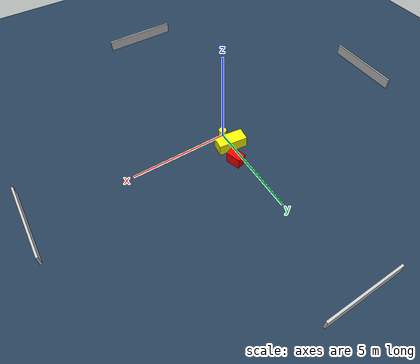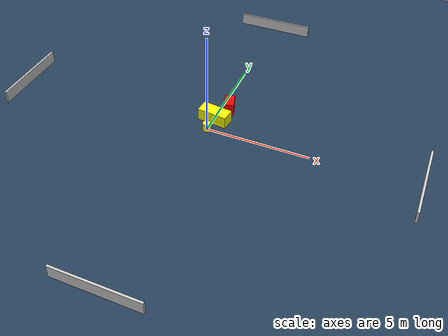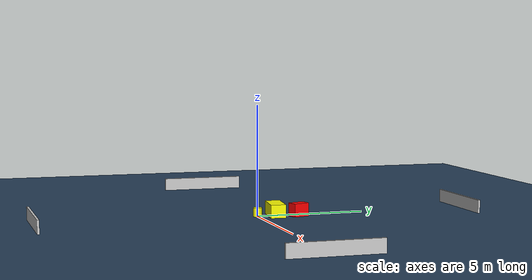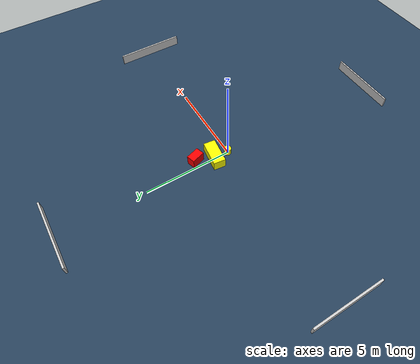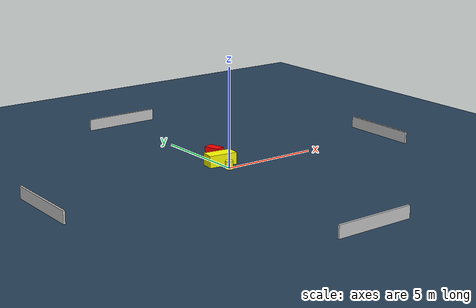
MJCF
<?xml version="1.0" ?>
<mujoco model="generated_environment">
  <option timestep="0.01" integrator="RK4" cone="elliptic"/>
  <default>
    <geom density="1"/>
  </default>
  <asset>
    <texture builtin="gradient" height="3072" name="skybox" rgb1="0.3 0.5 0.7" rgb2="0 0 0" type="skybox" width="512"/>
    <texture builtin="checker" height="300" name="groundplane" rgb1="0.2 0.3 0.4" rgb2="0.1 0.2 0.3" type="2d" width="300"/>
    <material name="groundplane" reflectance="0.2" texrepeat="5 5" texture="groundplane"/>
  </asset>
  <worldbody>
    <light dir="0 0 -1" directional="true" pos="0 0 1.5"/>
    <geom condim="3" friction="0.5 0.005 0.001" material="groundplane" name="floor" pos="0 0 0" size="0 0 0.05" type="plane"/>
    <body name="walls">
      <geom name="wall_1" condim="4" pos="-10.0 0.0 0.3" rgba="0.800000011920929 0.800000011920929 0.800000011920929 1.0" size="0.05 2.0 0.3" type="box"/>
      <geom name="wall_2" condim="4" pos="10.0 0.0 0.3" rgba="0.800000011920929 0.800000011920929 0.800000011920929 1.0" size="0.05 2.0 0.3" type="box"/>
      <geom name="wall_3" condim="4" pos="0.0 -10.0 0.3" rgba="0.800000011920929 0.800000011920929 0.800000011920929 1.0" size="2.0 0.05 0.3" type="box"/>
      <geom name="wall_4" condim="4" pos="0.0 10.0 0.3" rgba="0.800000011920929 0.800000011920929 0.800000011920929 1.0" size="2.0 0.05 0.3" type="box"/>
    </body>
    <body name="robot">
      <joint name="joint_x" type="slide" pos="0 0 0" axis="1 0 0"/>
      <joint name="joint_y" type="slide" pos="0 0 0" axis="0 1 0"/>
      <geom name="robot" type="cylinder" pos="0.0 0.0 0.2" size="0.2 0.2 0.0" mass="5.0" friction="1.0 0.005 0.0001" condim="4" rgba="1.0 1.0 0.0 1.0"/>
    </body>
    <body name="obstacle_1_movable">
      <geom name="obstacle_1_movable" condim="4" pos="0.0579141369271007 0.8257947266292858 0.3" euler="0 0 262.9007461691565" friction="0.0 0.005 0.001" rgba="1.0 1.0 0.0 1.0" size="0.34063310964539883 0.7387476395682475 0.3" type="box" mass="0.1"/>
      <joint type="free"/>
    </body>
    <body name="obstacle_2_static">
      <geom name="obstacle_2_static" condim="4" pos="0.4119406166728092 1.8194278115277702 0.3" euler="0 0 287.21656766633623" friction="0.0 0.005 0.001" rgba="1.0 0.0 0.0 1.0" size="0.38562796792838083 0.24190537078143526 0.3" type="box"/>
    </body>
  </worldbody>
  <actuator>
    <motor name="actuator_x" joint="joint_x" gear="1" ctrlrange="-1 1"/>
    <motor name="actuator_y" joint="joint_y" gear="1" ctrlrange="-1 1"/>
  </actuator>
</mujoco>
